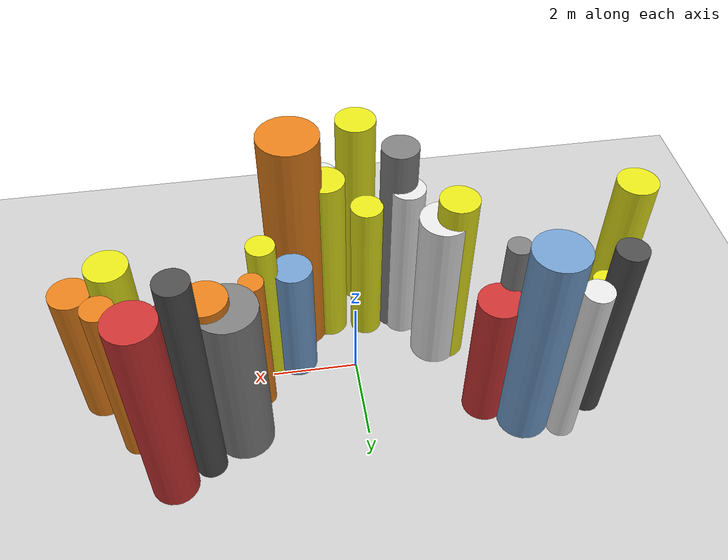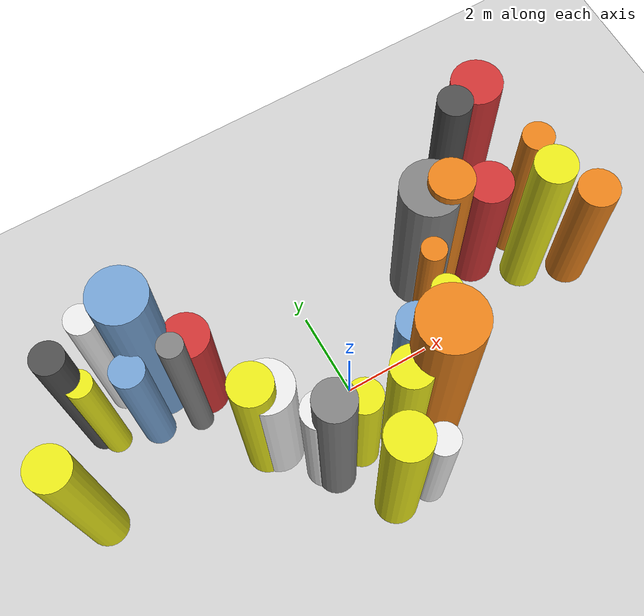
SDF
<?xml version='1.0'?>
<sdf version='1.6'>
  <world name='routeA_rl_v1__dense_recovery__rl_val__s_turn_multi_obstacle__000107'>
    <!-- Sun light -->
    <light name='sun' type='directional'>
      <cast_shadows>1</cast_shadows>
      <pose>0 0 10 0 0 0</pose>
      <diffuse>0.8 0.8 0.8 1</diffuse>
      <specular>0.2 0.2 0.2 1</specular>
      <attenuation>
        <range>1000</range>
        <constant>0.9</constant>
        <linear>0.01</linear>
        <quadratic>0.001</quadratic>
      </attenuation>
      <direction>-0.5 0.1 -0.9</direction>
    </light>

    <!-- Ground plane -->
    <model name='ground_plane'>
      <static>1</static>
      <link name='link'>
        <collision name='collision'>
          <geometry>
            <plane>
              <normal>0 0 1</normal>
              <size>100 100</size>
            </plane>
          </geometry>
          <surface>
            <contact>
              <collide_bitmask>65535</collide_bitmask>
              <ode/>
            </contact>
            <friction>
              <ode>
                <mu>100</mu>
                <mu2>50</mu2>
              </ode>
              <torsional><ode/></torsional>
            </friction>
            <bounce/>
          </surface>
          <max_contacts>10</max_contacts>
        </collision>
        <visual name='visual'>
          <cast_shadows>0</cast_shadows>
          <geometry>
            <plane>
              <normal>0 0 1</normal>
              <size>100 100</size>
            </plane>
          </geometry>
          <material>
            <script>
              <uri>file://media/materials/scripts/gazebo.material</uri>
              <n>Gazebo/Grey</n>
            </script>
          </material>
        </visual>
      </link>
    </model>

    <!-- Environment -->
    <magnetic_field>6e-06 2.3e-05 -4.2e-05</magnetic_field>
    <atmosphere type='adiabatic'/>
    <physics name='default_physics' default='0' type='ode'>
      <gravity>0 0 -9.8</gravity>
      <max_step_size>0.004</max_step_size>
      <real_time_factor>1</real_time_factor>
      <real_time_update_rate>250</real_time_update_rate>
    </physics>
    <scene>
      <ambient>0.4 0.4 0.4 1</ambient>
      <background>0.7 0.7 0.7 1</background>
      <shadows>1</shadows>
    </scene>
    <wind/>
    <spherical_coordinates>
      <surface_model>EARTH_WGS84</surface_model>
      <latitude_deg>0</latitude_deg>
      <longitude_deg>0</longitude_deg>
      <elevation>0</elevation>
      <heading_deg>0</heading_deg>
    </spherical_coordinates>

    <!-- ============ OBSTACLES (28) ============ -->
    <model name='s_turn_obs_0'>
      <static>1</static>
      <link name='link'>
        <visual name='visual'>
          <geometry>
            <cylinder>
              <radius>0.4469</radius>
              <length>5.0465</length>
            </cylinder>
          </geometry>
          <material>
            <script>
              <n>Gazebo/Yellow</n>
              <uri>file://media/materials/scripts/gazebo.material</uri>
            </script>
            <ambient>0.9 0.9 0.1 1</ambient>
          </material>
        </visual>
        <collision name='collision'>
          <geometry>
            <cylinder>
              <radius>0.4469</radius>
              <length>5.0465</length>
            </cylinder>
          </geometry>
          <max_contacts>10</max_contacts>
          <surface>
            <contact><ode/></contact>
            <bounce/>
            <friction>
              <ode><mu>1</mu><mu2>1</mu2></ode>
              <torsional><ode/></torsional>
            </friction>
          </surface>
        </collision>
      </link>
      <pose>-6.0000 -0.0356 2.5232 0 0 0.0000</pose>
    </model>

    <model name='s_turn_obs_1'>
      <static>1</static>
      <link name='link'>
        <visual name='visual'>
          <geometry>
            <cylinder>
              <radius>0.3403</radius>
              <length>4.9825</length>
            </cylinder>
          </geometry>
          <material>
            <script>
              <n>Gazebo/DarkGrey</n>
              <uri>file://media/materials/scripts/gazebo.material</uri>
            </script>
            <ambient>0.3 0.3 0.3 1</ambient>
          </material>
        </visual>
        <collision name='collision'>
          <geometry>
            <cylinder>
              <radius>0.3403</radius>
              <length>4.9825</length>
            </cylinder>
          </geometry>
          <max_contacts>10</max_contacts>
          <surface>
            <contact><ode/></contact>
            <bounce/>
            <friction>
              <ode><mu>1</mu><mu2>1</mu2></ode>
              <torsional><ode/></torsional>
            </friction>
          </surface>
        </collision>
      </link>
      <pose>-5.2000 1.8386 2.4913 0 0 0.0000</pose>
    </model>

    <model name='s_turn_obs_2'>
      <static>1</static>
      <link name='link'>
        <visual name='visual'>
          <geometry>
            <cylinder>
              <radius>0.3210</radius>
              <length>4.5582</length>
            </cylinder>
          </geometry>
          <material>
            <script>
              <n>Gazebo/White</n>
              <uri>file://media/materials/scripts/gazebo.material</uri>
            </script>
            <ambient>0.9 0.9 0.9 1</ambient>
          </material>
        </visual>
        <collision name='collision'>
          <geometry>
            <cylinder>
              <radius>0.3210</radius>
              <length>4.5582</length>
            </cylinder>
          </geometry>
          <max_contacts>10</max_contacts>
          <surface>
            <contact><ode/></contact>
            <bounce/>
            <friction>
              <ode><mu>1</mu><mu2>1</mu2></ode>
              <torsional><ode/></torsional>
            </friction>
          </surface>
        </collision>
      </link>
      <pose>-4.4000 2.4367 2.2791 0 0 0.0000</pose>
    </model>

    <model name='s_turn_obs_3'>
      <static>1</static>
      <link name='link'>
        <visual name='visual'>
          <geometry>
            <cylinder>
              <radius>0.5931</radius>
              <length>5.4453</length>
            </cylinder>
          </geometry>
          <material>
            <script>
              <n>Gazebo/Blue</n>
              <uri>file://media/materials/scripts/gazebo.material</uri>
            </script>
            <ambient>0.447 0.624 0.812 1</ambient>
          </material>
        </visual>
        <collision name='collision'>
          <geometry>
            <cylinder>
              <radius>0.5931</radius>
              <length>5.4453</length>
            </cylinder>
          </geometry>
          <max_contacts>10</max_contacts>
          <surface>
            <contact><ode/></contact>
            <bounce/>
            <friction>
              <ode><mu>1</mu><mu2>1</mu2></ode>
              <torsional><ode/></torsional>
            </friction>
          </surface>
        </collision>
      </link>
      <pose>-3.6000 2.1001 2.7226 0 0 0.0000</pose>
    </model>

    <model name='s_turn_obs_4'>
      <static>1</static>
      <link name='link'>
        <visual name='visual'>
          <geometry>
            <cylinder>
              <radius>0.4971</radius>
              <length>3.6030</length>
            </cylinder>
          </geometry>
          <material>
            <script>
              <n>Gazebo/Red</n>
              <uri>file://media/materials/scripts/gazebo.material</uri>
            </script>
            <ambient>0.8 0.2 0.2 1</ambient>
          </material>
        </visual>
        <collision name='collision'>
          <geometry>
            <cylinder>
              <radius>0.4971</radius>
              <length>3.6030</length>
            </cylinder>
          </geometry>
          <max_contacts>10</max_contacts>
          <surface>
            <contact><ode/></contact>
            <bounce/>
            <friction>
              <ode><mu>1</mu><mu2>1</mu2></ode>
              <torsional><ode/></torsional>
            </friction>
          </surface>
        </collision>
      </link>
      <pose>-2.8000 1.5617 1.8015 0 0 0.0000</pose>
    </model>

    <model name='s_turn_obs_5'>
      <static>1</static>
      <link name='link'>
        <visual name='visual'>
          <geometry>
            <cylinder>
              <radius>0.5615</radius>
              <length>4.2639</length>
            </cylinder>
          </geometry>
          <material>
            <script>
              <n>Gazebo/White</n>
              <uri>file://media/materials/scripts/gazebo.material</uri>
            </script>
            <ambient>0.9 0.9 0.9 1</ambient>
          </material>
        </visual>
        <collision name='collision'>
          <geometry>
            <cylinder>
              <radius>0.5615</radius>
              <length>4.2639</length>
            </cylinder>
          </geometry>
          <max_contacts>10</max_contacts>
          <surface>
            <contact><ode/></contact>
            <bounce/>
            <friction>
              <ode><mu>1</mu><mu2>1</mu2></ode>
              <torsional><ode/></torsional>
            </friction>
          </surface>
        </collision>
      </link>
      <pose>-2.0000 -0.3514 2.1319 0 0 0.0000</pose>
    </model>

    <model name='s_turn_obs_6'>
      <static>1</static>
      <link name='link'>
        <visual name='visual'>
          <geometry>
            <cylinder>
              <radius>0.4210</radius>
              <length>5.3696</length>
            </cylinder>
          </geometry>
          <material>
            <script>
              <n>Gazebo/Grey</n>
              <uri>file://media/materials/scripts/gazebo.material</uri>
            </script>
            <ambient>0.5 0.5 0.5 1</ambient>
          </material>
        </visual>
        <collision name='collision'>
          <geometry>
            <cylinder>
              <radius>0.4210</radius>
              <length>5.3696</length>
            </cylinder>
          </geometry>
          <max_contacts>10</max_contacts>
          <surface>
            <contact><ode/></contact>
            <bounce/>
            <friction>
              <ode><mu>1</mu><mu2>1</mu2></ode>
              <torsional><ode/></torsional>
            </friction>
          </surface>
        </collision>
      </link>
      <pose>-1.2000 -1.5242 2.6848 0 0 0.0000</pose>
    </model>

    <model name='s_turn_obs_7'>
      <static>1</static>
      <link name='link'>
        <visual name='visual'>
          <geometry>
            <cylinder>
              <radius>0.4675</radius>
              <length>5.3081</length>
            </cylinder>
          </geometry>
          <material>
            <script>
              <n>Gazebo/Yellow</n>
              <uri>file://media/materials/scripts/gazebo.material</uri>
            </script>
            <ambient>0.9 0.9 0.1 1</ambient>
          </material>
        </visual>
        <collision name='collision'>
          <geometry>
            <cylinder>
              <radius>0.4675</radius>
              <length>5.3081</length>
            </cylinder>
          </geometry>
          <max_contacts>10</max_contacts>
          <surface>
            <contact><ode/></contact>
            <bounce/>
            <friction>
              <ode><mu>1</mu><mu2>1</mu2></ode>
              <torsional><ode/></torsional>
            </friction>
          </surface>
        </collision>
      </link>
      <pose>-0.4000 -2.7024 2.6541 0 0 0.0000</pose>
    </model>

    <model name='s_turn_obs_8'>
      <static>1</static>
      <link name='link'>
        <visual name='visual'>
          <geometry>
            <cylinder>
              <radius>0.3368</radius>
              <length>3.8863</length>
            </cylinder>
          </geometry>
          <material>
            <script>
              <n>Gazebo/White</n>
              <uri>file://media/materials/scripts/gazebo.material</uri>
            </script>
            <ambient>0.9 0.9 0.9 1</ambient>
          </material>
        </visual>
        <collision name='collision'>
          <geometry>
            <cylinder>
              <radius>0.3368</radius>
              <length>3.8863</length>
            </cylinder>
          </geometry>
          <max_contacts>10</max_contacts>
          <surface>
            <contact><ode/></contact>
            <bounce/>
            <friction>
              <ode><mu>1</mu><mu2>1</mu2></ode>
              <torsional><ode/></torsional>
            </friction>
          </surface>
        </collision>
      </link>
      <pose>0.4000 -2.7636 1.9431 0 0 0.0000</pose>
    </model>

    <model name='s_turn_obs_9'>
      <static>1</static>
      <link name='link'>
        <visual name='visual'>
          <geometry>
            <cylinder>
              <radius>0.6771</radius>
              <length>5.9880</length>
            </cylinder>
          </geometry>
          <material>
            <script>
              <n>Gazebo/Orange</n>
              <uri>file://media/materials/scripts/gazebo.material</uri>
            </script>
            <ambient>0.9 0.5 0.1 1</ambient>
          </material>
        </visual>
        <collision name='collision'>
          <geometry>
            <cylinder>
              <radius>0.6771</radius>
              <length>5.9880</length>
            </cylinder>
          </geometry>
          <max_contacts>10</max_contacts>
          <surface>
            <contact><ode/></contact>
            <bounce/>
            <friction>
              <ode><mu>1</mu><mu2>1</mu2></ode>
              <torsional><ode/></torsional>
            </friction>
          </surface>
        </collision>
      </link>
      <pose>1.2000 -1.4485 2.9940 0 0 0.0000</pose>
    </model>

    <model name='s_turn_obs_10'>
      <static>1</static>
      <link name='link'>
        <visual name='visual'>
          <geometry>
            <cylinder>
              <radius>0.3230</radius>
              <length>4.0844</length>
            </cylinder>
          </geometry>
          <material>
            <script>
              <n>Gazebo/Yellow</n>
              <uri>file://media/materials/scripts/gazebo.material</uri>
            </script>
            <ambient>0.9 0.9 0.1 1</ambient>
          </material>
        </visual>
        <collision name='collision'>
          <geometry>
            <cylinder>
              <radius>0.3230</radius>
              <length>4.0844</length>
            </cylinder>
          </geometry>
          <max_contacts>10</max_contacts>
          <surface>
            <contact><ode/></contact>
            <bounce/>
            <friction>
              <ode><mu>1</mu><mu2>1</mu2></ode>
              <torsional><ode/></torsional>
            </friction>
          </surface>
        </collision>
      </link>
      <pose>2.0000 -0.3023 2.0422 0 0 0.0000</pose>
    </model>

    <model name='s_turn_obs_11'>
      <static>1</static>
      <link name='link'>
        <visual name='visual'>
          <geometry>
            <cylinder>
              <radius>0.6627</radius>
              <length>4.3719</length>
            </cylinder>
          </geometry>
          <material>
            <script>
              <n>Gazebo/Grey</n>
              <uri>file://media/materials/scripts/gazebo.material</uri>
            </script>
            <ambient>0.5 0.5 0.5 1</ambient>
          </material>
        </visual>
        <collision name='collision'>
          <geometry>
            <cylinder>
              <radius>0.6627</radius>
              <length>4.3719</length>
            </cylinder>
          </geometry>
          <max_contacts>10</max_contacts>
          <surface>
            <contact><ode/></contact>
            <bounce/>
            <friction>
              <ode><mu>1</mu><mu2>1</mu2></ode>
              <torsional><ode/></torsional>
            </friction>
          </surface>
        </collision>
      </link>
      <pose>2.8000 1.6031 2.1860 0 0 0.0000</pose>
    </model>

    <model name='s_turn_obs_12'>
      <static>1</static>
      <link name='link'>
        <visual name='visual'>
          <geometry>
            <cylinder>
              <radius>0.3499</radius>
              <length>5.9297</length>
            </cylinder>
          </geometry>
          <material>
            <script>
              <n>Gazebo/DarkGrey</n>
              <uri>file://media/materials/scripts/gazebo.material</uri>
            </script>
            <ambient>0.3 0.3 0.3 1</ambient>
          </material>
        </visual>
        <collision name='collision'>
          <geometry>
            <cylinder>
              <radius>0.3499</radius>
              <length>5.9297</length>
            </cylinder>
          </geometry>
          <max_contacts>10</max_contacts>
          <surface>
            <contact><ode/></contact>
            <bounce/>
            <friction>
              <ode><mu>1</mu><mu2>1</mu2></ode>
              <torsional><ode/></torsional>
            </friction>
          </surface>
        </collision>
      </link>
      <pose>3.6000 2.2793 2.9649 0 0 0.0000</pose>
    </model>

    <model name='s_turn_obs_13'>
      <static>1</static>
      <link name='link'>
        <visual name='visual'>
          <geometry>
            <cylinder>
              <radius>0.5209</radius>
              <length>5.4656</length>
            </cylinder>
          </geometry>
          <material>
            <script>
              <n>Gazebo/Red</n>
              <uri>file://media/materials/scripts/gazebo.material</uri>
            </script>
            <ambient>0.8 0.2 0.2 1</ambient>
          </material>
        </visual>
        <collision name='collision'>
          <geometry>
            <cylinder>
              <radius>0.5209</radius>
              <length>5.4656</length>
            </cylinder>
          </geometry>
          <max_contacts>10</max_contacts>
          <surface>
            <contact><ode/></contact>
            <bounce/>
            <friction>
              <ode><mu>1</mu><mu2>1</mu2></ode>
              <torsional><ode/></torsional>
            </friction>
          </surface>
        </collision>
      </link>
      <pose>4.4000 2.6711 2.7328 0 0 0.0000</pose>
    </model>

    <model name='s_turn_obs_14'>
      <static>1</static>
      <link name='link'>
        <visual name='visual'>
          <geometry>
            <cylinder>
              <radius>0.3387</radius>
              <length>4.5786</length>
            </cylinder>
          </geometry>
          <material>
            <script>
              <n>Gazebo/Orange</n>
              <uri>file://media/materials/scripts/gazebo.material</uri>
            </script>
            <ambient>0.9 0.5 0.1 1</ambient>
          </material>
        </visual>
        <collision name='collision'>
          <geometry>
            <cylinder>
              <radius>0.3387</radius>
              <length>4.5786</length>
            </cylinder>
          </geometry>
          <max_contacts>10</max_contacts>
          <surface>
            <contact><ode/></contact>
            <bounce/>
            <friction>
              <ode><mu>1</mu><mu2>1</mu2></ode>
              <torsional><ode/></torsional>
            </friction>
          </surface>
        </collision>
      </link>
      <pose>5.2000 1.4424 2.2893 0 0 0.0000</pose>
    </model>

    <model name='s_turn_obs_15'>
      <static>1</static>
      <link name='link'>
        <visual name='visual'>
          <geometry>
            <cylinder>
              <radius>0.4529</radius>
              <length>3.7460</length>
            </cylinder>
          </geometry>
          <material>
            <script>
              <n>Gazebo/Orange</n>
              <uri>file://media/materials/scripts/gazebo.material</uri>
            </script>
            <ambient>0.9 0.5 0.1 1</ambient>
          </material>
        </visual>
        <collision name='collision'>
          <geometry>
            <cylinder>
              <radius>0.4529</radius>
              <length>3.7460</length>
            </cylinder>
          </geometry>
          <max_contacts>10</max_contacts>
          <surface>
            <contact><ode/></contact>
            <bounce/>
            <friction>
              <ode><mu>1</mu><mu2>1</mu2></ode>
              <torsional><ode/></torsional>
            </friction>
          </surface>
        </collision>
      </link>
      <pose>6.0000 0.1538 1.8730 0 0 0.0000</pose>
    </model>

    <model name='s_turn_obs2_0'>
      <static>1</static>
      <link name='link'>
        <visual name='visual'>
          <geometry>
            <cylinder>
              <radius>0.2952</radius>
              <length>3.8860</length>
            </cylinder>
          </geometry>
          <material>
            <script>
              <n>Gazebo/Yellow</n>
              <uri>file://media/materials/scripts/gazebo.material</uri>
            </script>
            <ambient>0.9 0.9 0.1 1</ambient>
          </material>
        </visual>
        <collision name='collision'>
          <geometry>
            <cylinder>
              <radius>0.2952</radius>
              <length>3.8860</length>
            </cylinder>
          </geometry>
          <max_contacts>10</max_contacts>
          <surface>
            <contact><ode/></contact>
            <bounce/>
            <friction>
              <ode><mu>1</mu><mu2>1</mu2></ode>
              <torsional><ode/></torsional>
            </friction>
          </surface>
        </collision>
      </link>
      <pose>-5.0000 1.5897 1.9430 0 0 0.0000</pose>
    </model>

    <model name='s_turn_obs2_1'>
      <static>1</static>
      <link name='link'>
        <visual name='visual'>
          <geometry>
            <cylinder>
              <radius>0.3609</radius>
              <length>3.8630</length>
            </cylinder>
          </geometry>
          <material>
            <script>
              <n>Gazebo/Blue</n>
              <uri>file://media/materials/scripts/gazebo.material</uri>
            </script>
            <ambient>0.447 0.624 0.812 1</ambient>
          </material>
        </visual>
        <collision name='collision'>
          <geometry>
            <cylinder>
              <radius>0.3609</radius>
              <length>3.8630</length>
            </cylinder>
          </geometry>
          <max_contacts>10</max_contacts>
          <surface>
            <contact><ode/></contact>
            <bounce/>
            <friction>
              <ode><mu>1</mu><mu2>1</mu2></ode>
              <torsional><ode/></torsional>
            </friction>
          </surface>
        </collision>
      </link>
      <pose>-4.0909 1.3688 1.9315 0 0 0.0000</pose>
    </model>

    <model name='s_turn_obs2_2'>
      <static>1</static>
      <link name='link'>
        <visual name='visual'>
          <geometry>
            <cylinder>
              <radius>0.2644</radius>
              <length>4.6674</length>
            </cylinder>
          </geometry>
          <material>
            <script>
              <n>Gazebo/Grey</n>
              <uri>file://media/materials/scripts/gazebo.material</uri>
            </script>
            <ambient>0.5 0.5 0.5 1</ambient>
          </material>
        </visual>
        <collision name='collision'>
          <geometry>
            <cylinder>
              <radius>0.2644</radius>
              <length>4.6674</length>
            </cylinder>
          </geometry>
          <max_contacts>10</max_contacts>
          <surface>
            <contact><ode/></contact>
            <bounce/>
            <friction>
              <ode><mu>1</mu><mu2>1</mu2></ode>
              <torsional><ode/></torsional>
            </friction>
          </surface>
        </collision>
      </link>
      <pose>-3.1818 1.0915 2.3337 0 0 0.0000</pose>
    </model>

    <model name='s_turn_obs2_3'>
      <static>1</static>
      <link name='link'>
        <visual name='visual'>
          <geometry>
            <cylinder>
              <radius>0.4437</radius>
              <length>4.7770</length>
            </cylinder>
          </geometry>
          <material>
            <script>
              <n>Gazebo/Yellow</n>
              <uri>file://media/materials/scripts/gazebo.material</uri>
            </script>
            <ambient>0.9 0.9 0.1 1</ambient>
          </material>
        </visual>
        <collision name='collision'>
          <geometry>
            <cylinder>
              <radius>0.4437</radius>
              <length>4.7770</length>
            </cylinder>
          </geometry>
          <max_contacts>10</max_contacts>
          <surface>
            <contact><ode/></contact>
            <bounce/>
            <friction>
              <ode><mu>1</mu><mu2>1</mu2></ode>
              <torsional><ode/></torsional>
            </friction>
          </surface>
        </collision>
      </link>
      <pose>-2.2727 -0.3423 2.3885 0 0 0.0000</pose>
    </model>

    <model name='s_turn_obs2_4'>
      <static>1</static>
      <link name='link'>
        <visual name='visual'>
          <geometry>
            <cylinder>
              <radius>0.3968</radius>
              <length>4.4055</length>
            </cylinder>
          </geometry>
          <material>
            <script>
              <n>Gazebo/White</n>
              <uri>file://media/materials/scripts/gazebo.material</uri>
            </script>
            <ambient>0.9 0.9 0.9 1</ambient>
          </material>
        </visual>
        <collision name='collision'>
          <geometry>
            <cylinder>
              <radius>0.3968</radius>
              <length>4.4055</length>
            </cylinder>
          </geometry>
          <max_contacts>10</max_contacts>
          <surface>
            <contact><ode/></contact>
            <bounce/>
            <friction>
              <ode><mu>1</mu><mu2>1</mu2></ode>
              <torsional><ode/></torsional>
            </friction>
          </surface>
        </collision>
      </link>
      <pose>-1.3636 -1.2831 2.2028 0 0 0.0000</pose>
    </model>

    <model name='s_turn_obs2_5'>
      <static>1</static>
      <link name='link'>
        <visual name='visual'>
          <geometry>
            <cylinder>
              <radius>0.3727</radius>
              <length>3.9466</length>
            </cylinder>
          </geometry>
          <material>
            <script>
              <n>Gazebo/Yellow</n>
              <uri>file://media/materials/scripts/gazebo.material</uri>
            </script>
            <ambient>0.9 0.9 0.1 1</ambient>
          </material>
        </visual>
        <collision name='collision'>
          <geometry>
            <cylinder>
              <radius>0.3727</radius>
              <length>3.9466</length>
            </cylinder>
          </geometry>
          <max_contacts>10</max_contacts>
          <surface>
            <contact><ode/></contact>
            <bounce/>
            <friction>
              <ode><mu>1</mu><mu2>1</mu2></ode>
              <torsional><ode/></torsional>
            </friction>
          </surface>
        </collision>
      </link>
      <pose>-0.4545 -1.3369 1.9733 0 0 0.0000</pose>
    </model>

    <model name='s_turn_obs2_6'>
      <static>1</static>
      <link name='link'>
        <visual name='visual'>
          <geometry>
            <cylinder>
              <radius>0.4449</radius>
              <length>4.6925</length>
            </cylinder>
          </geometry>
          <material>
            <script>
              <n>Gazebo/Yellow</n>
              <uri>file://media/materials/scripts/gazebo.material</uri>
            </script>
            <ambient>0.9 0.9 0.1 1</ambient>
          </material>
        </visual>
        <collision name='collision'>
          <geometry>
            <cylinder>
              <radius>0.4449</radius>
              <length>4.6925</length>
            </cylinder>
          </geometry>
          <max_contacts>10</max_contacts>
          <surface>
            <contact><ode/></contact>
            <bounce/>
            <friction>
              <ode><mu>1</mu><mu2>1</mu2></ode>
              <torsional><ode/></torsional>
            </friction>
          </surface>
        </collision>
      </link>
      <pose>0.4545 -1.4929 2.3463 0 0 0.0000</pose>
    </model>

    <model name='s_turn_obs2_7'>
      <static>1</static>
      <link name='link'>
        <visual name='visual'>
          <geometry>
            <cylinder>
              <radius>0.4521</radius>
              <length>3.2677</length>
            </cylinder>
          </geometry>
          <material>
            <script>
              <n>Gazebo/Blue</n>
              <uri>file://media/materials/scripts/gazebo.material</uri>
            </script>
            <ambient>0.447 0.624 0.812 1</ambient>
          </material>
        </visual>
        <collision name='collision'>
          <geometry>
            <cylinder>
              <radius>0.4521</radius>
              <length>3.2677</length>
            </cylinder>
          </geometry>
          <max_contacts>10</max_contacts>
          <surface>
            <contact><ode/></contact>
            <bounce/>
            <friction>
              <ode><mu>1</mu><mu2>1</mu2></ode>
              <torsional><ode/></torsional>
            </friction>
          </surface>
        </collision>
      </link>
      <pose>1.3636 -0.3460 1.6338 0 0 0.0000</pose>
    </model>

    <model name='s_turn_obs2_8'>
      <static>1</static>
      <link name='link'>
        <visual name='visual'>
          <geometry>
            <cylinder>
              <radius>0.2720</radius>
              <length>3.9478</length>
            </cylinder>
          </geometry>
          <material>
            <script>
              <n>Gazebo/Orange</n>
              <uri>file://media/materials/scripts/gazebo.material</uri>
            </script>
            <ambient>0.9 0.5 0.1 1</ambient>
          </material>
        </visual>
        <collision name='collision'>
          <geometry>
            <cylinder>
              <radius>0.2720</radius>
              <length>3.9478</length>
            </cylinder>
          </geometry>
          <max_contacts>10</max_contacts>
          <surface>
            <contact><ode/></contact>
            <bounce/>
            <friction>
              <ode><mu>1</mu><mu2>1</mu2></ode>
              <torsional><ode/></torsional>
            </friction>
          </surface>
        </collision>
      </link>
      <pose>2.2727 0.5967 1.9739 0 0 0.0000</pose>
    </model>

    <model name='s_turn_obs2_9'>
      <static>1</static>
      <link name='link'>
        <visual name='visual'>
          <geometry>
            <cylinder>
              <radius>0.4789</radius>
              <length>4.5805</length>
            </cylinder>
          </geometry>
          <material>
            <script>
              <n>Gazebo/Orange</n>
              <uri>file://media/materials/scripts/gazebo.material</uri>
            </script>
            <ambient>0.9 0.5 0.1 1</ambient>
          </material>
        </visual>
        <collision name='collision'>
          <geometry>
            <cylinder>
              <radius>0.4789</radius>
              <length>4.5805</length>
            </cylinder>
          </geometry>
          <max_contacts>10</max_contacts>
          <surface>
            <contact><ode/></contact>
            <bounce/>
            <friction>
              <ode><mu>1</mu><mu2>1</mu2></ode>
              <torsional><ode/></torsional>
            </friction>
          </surface>
        </collision>
      </link>
      <pose>3.1818 1.4862 2.2902 0 0 0.0000</pose>
    </model>

    <model name='s_turn_obs2_10'>
      <static>1</static>
      <link name='link'>
        <visual name='visual'>
          <geometry>
            <cylinder>
              <radius>0.4969</radius>
              <length>3.8648</length>
            </cylinder>
          </geometry>
          <material>
            <script>
              <n>Gazebo/Red</n>
              <uri>file://media/materials/scripts/gazebo.material</uri>
            </script>
            <ambient>0.8 0.2 0.2 1</ambient>
          </material>
        </visual>
        <collision name='collision'>
          <geometry>
            <cylinder>
              <radius>0.4969</radius>
              <length>3.8648</length>
            </cylinder>
          </geometry>
          <max_contacts>10</max_contacts>
          <surface>
            <contact><ode/></contact>
            <bounce/>
            <friction>
              <ode><mu>1</mu><mu2>1</mu2></ode>
              <torsional><ode/></torsional>
            </friction>
          </surface>
        </collision>
      </link>
      <pose>4.0909 1.3359 1.9324 0 0 0.0000</pose>
    </model>

    <model name='s_turn_obs2_11'>
      <static>1</static>
      <link name='link'>
        <visual name='visual'>
          <geometry>
            <cylinder>
              <radius>0.4467</radius>
              <length>4.8655</length>
            </cylinder>
          </geometry>
          <material>
            <script>
              <n>Gazebo/Yellow</n>
              <uri>file://media/materials/scripts/gazebo.material</uri>
            </script>
            <ambient>0.9 0.9 0.1 1</ambient>
          </material>
        </visual>
        <collision name='collision'>
          <geometry>
            <cylinder>
              <radius>0.4467</radius>
              <length>4.8655</length>
            </cylinder>
          </geometry>
          <max_contacts>10</max_contacts>
          <surface>
            <contact><ode/></contact>
            <bounce/>
            <friction>
              <ode><mu>1</mu><mu2>1</mu2></ode>
              <torsional><ode/></torsional>
            </friction>
          </surface>
        </collision>
      </link>
      <pose>5.0000 0.6156 2.4328 0 0 0.0000</pose>
    </model>

    <!-- GUI camera -->
    <gui fullscreen='0'>
      <camera name='user_camera'>
        <pose>-15 0 18 0 0.85 0.15</pose>
        <view_controller>orbit</view_controller>
        <projection_type>perspective</projection_type>
      </camera>
    </gui>
  </world>
</sdf>
